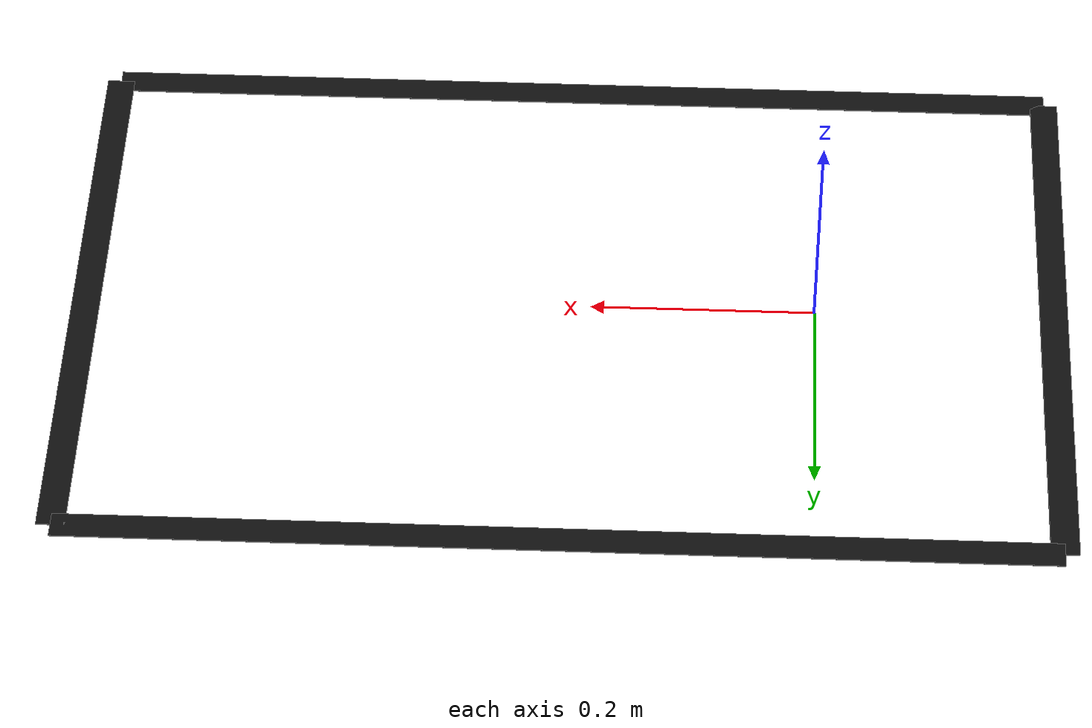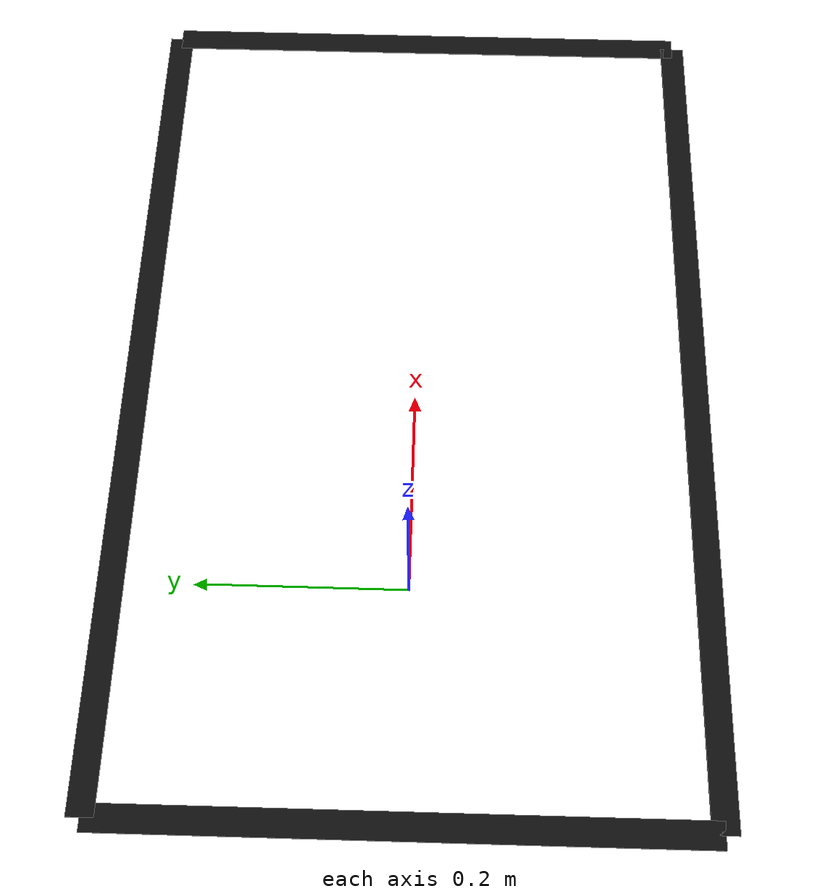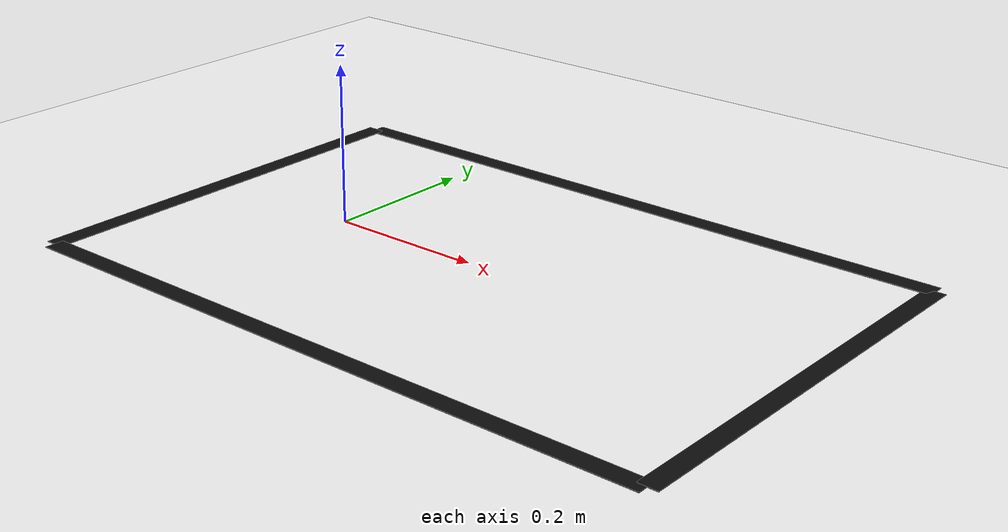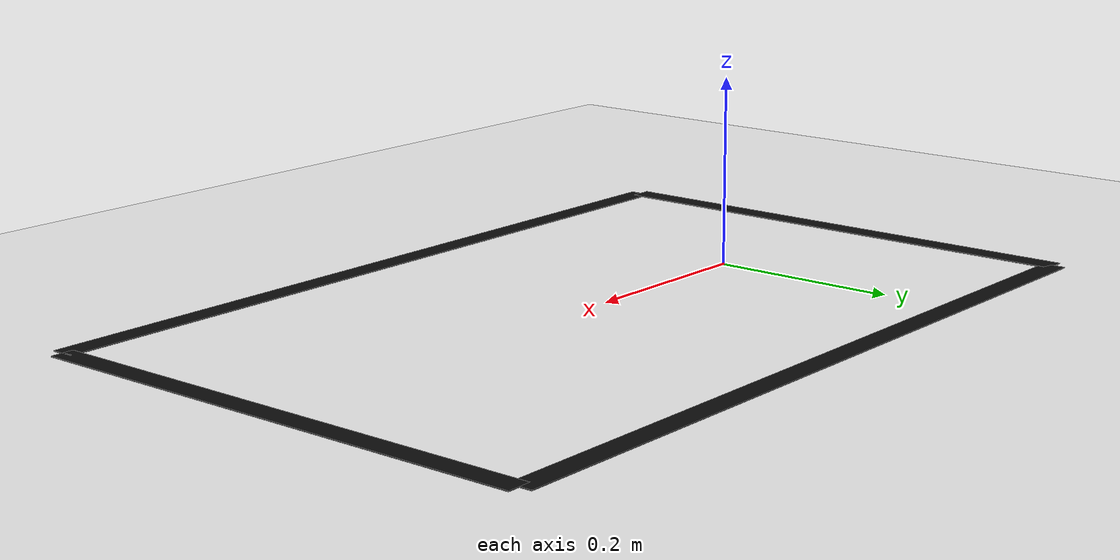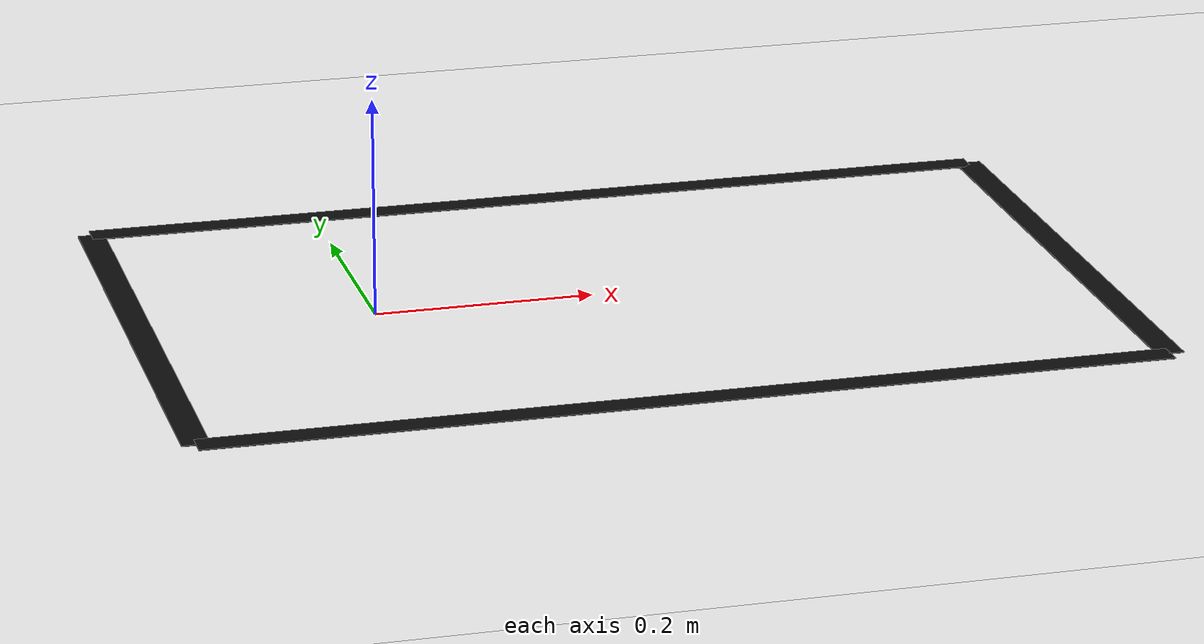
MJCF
<mujoco model="track">
  <!--
  Black line track for differential drive robot
  Generated from waypoints - rectangular track with black tape
  Scale: 5x original size for robot compatibility
  -->

  <worldbody>
    <!-- Ground plane -->
    <geom name="floor" type="plane" size="1.5 1.5 0.1"
          rgba="0.95 0.95 0.95 1" friction="1.0 0.005 0.0001"/>

    <!-- Black track segments - scaled 5x -->
    <geom name="track_seg_0" type="box"
          pos="0.6505 0.0000 0.0005"
          size="0.2775 0.0125 0.0005"
          euler="0 0 90"
          rgba="0.05 0.05 0.05 1"/>
    <geom name="track_seg_1" type="box"
          pos="0.2190 0.2775 0.0005"
          size="0.4315 0.0125 0.0005"
          euler="0 0 180"
          rgba="0.05 0.05 0.05 1"/>
    <geom name="track_seg_2" type="box"
          pos="-0.2125 0.0000 0.0005"
          size="0.2775 0.0125 0.0005"
          euler="0 0 -90"
          rgba="0.05 0.05 0.05 1"/>
    <geom name="track_seg_3" type="box"
          pos="0.2190 -0.2775 0.0005"
          size="0.4315 0.0125 0.0005"
          euler="0 0 0"
          rgba="0.05 0.05 0.05 1"/>
  </worldbody>
</mujoco>
